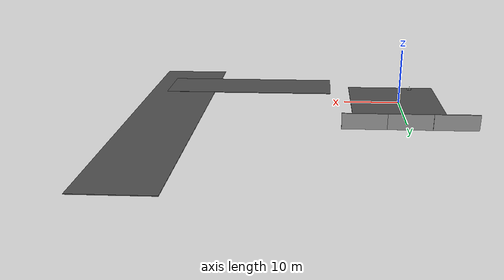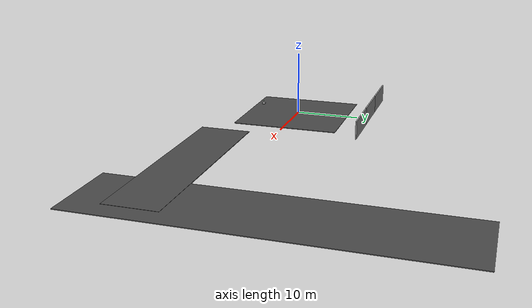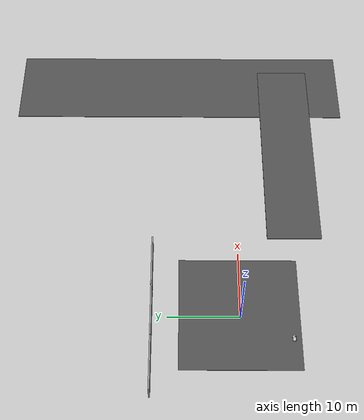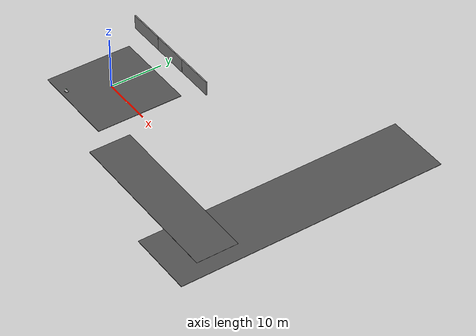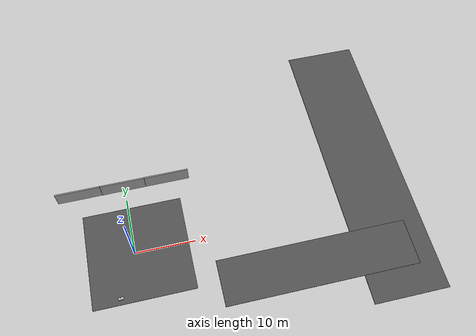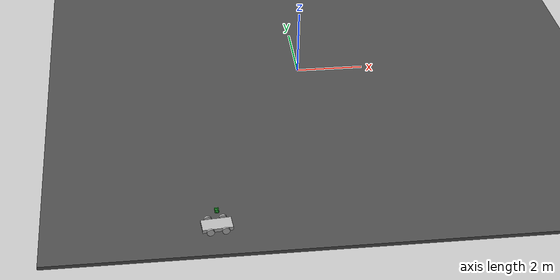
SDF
<sdf version="1.6">
 <world name="default">
  <light name="sun" type="directional">
   <pose>0 0 10 0 -0 0</pose>
   <diffuse>0.8 0.8 0.8 1</diffuse>
   <specular>0.1 0.1 0.1 1</specular>
   <attenuation>
    <range>1000</range>
    <constant>0.9</constant>
    <linear>0.01</linear>
    <quadratic>0.001</quadratic>
   </attenuation>
   <direction>-0.5 0.5 -1</direction>
  </light>
  <gravity>0 0 -9.8</gravity>
  <magnetic_field>6e-06 2.3e-05 -4.2e-05</magnetic_field>
  <atmosphere type="adiabatic"/>
  <physics name="default_physics" default="0" type="ode">
   <max_step_size>0.001</max_step_size>
   <real_time_factor>1</real_time_factor>
   <real_time_update_rate>1000</real_time_update_rate>
  </physics>
  <scene><ambient>0.4 0.4 0.4 1</ambient><background>0.7 0.7 0.7 1</background><shadows>1</shadows></scene>
  <spherical_coordinates>
   <surface_model>EARTH_WGS84</surface_model>
   <latitude_deg>0</latitude_deg>
   <longitude_deg>0</longitude_deg>
   <elevation>0</elevation>
   <heading_deg>0</heading_deg>
  </spherical_coordinates>
  <model name="asphalt_plane">
   <static>1</static>
   <link name="link">
    <collision name="collision"><geometry><box><size>16.5573 16.4946 0.1</size></box></geometry></collision>
    <visual name="visual">
     <cast_shadows>0</cast_shadows>
     <geometry><box><size>16.5573 16.4946 0.1</size></box></geometry>
     <material>
      <script>
       <uri>model://asphalt_plane/materials/scripts</uri>
       <uri>model://asphalt_plane/materials/textures</uri>
       <name>vrc/asphalt</name>
      </script>
     </material>
    </visual>
   </link>
   <pose>0.624498 0.147671 0 0 -0 0</pose>
  </model>
  <model name="small_car">
   <link name="chassis">
    <inertial>
     <pose>0 0 0.203947 0 -0 0</pose>
     <mass>30.4</mass>
     <inertia>
      <ixx>5.03553</ixx>
      <ixy>4.03897e-28</ixy>
      <ixz>0</ixz>
      <iyy>25.0355</iyy>
      <iyz>0</iyz>
      <izz>4</izz>
     </inertia>
    </inertial>
    <collision name="chassis_fixed_joint_lump__collision_collision">
     <geometry><box><size>0.8 0.4 0.1</size></box></geometry>
    </collision>
    <collision name="chassis_fixed_joint_lump__camera_neg_y_collision_1">
     <pose>0 0 0.5 0 -0 3.14159</pose>
     <geometry><box><size>0.5 0.1 0.1</size></box></geometry>
    </collision>
    <collision name="chassis_fixed_joint_lump__camera_pos_x_collision_2">
     <pose>0 0 0.5 0 -0 0</pose>
     <geometry><box><size>0.1 0.5 0.1</size></box></geometry>
    </collision>
    <collision name="chassis_fixed_joint_lump__camera_neg_x_collision_3">
     <pose>0 0 0.5 0 -0 -5e-06</pose>
     <geometry><box><size>0.1 0.5 0.1</size></box></geometry>
    </collision>
    <collision name="chassis_fixed_joint_lump__camera_pos_y_collision_4">
     <pose>0 0 0.5 0 -0 3.14159</pose>
     <geometry><box><size>0.5 0.1 0.1</size></box></geometry>
    </collision>
    <visual name="chassis_visual_visual"><geometry><box><size>0.8 0.4 0.1</size></box></geometry></visual>
    <visual name="chassis_fixed_joint_lump__camera_neg_y_visual_1">
     <pose>0 0 0.5 0 -0 3.14159</pose>
     <geometry><box><size>0.1 0.1 0.1</size></box></geometry>
     <material>
      <script><name>Gazebo/Green</name><uri>file://media/materials/scripts/gazebo.material</uri></script>
     </material>
    </visual>
    <visual name="chassis_fixed_joint_lump__camera_pos_x_visual_2">
     <pose>0 0 0.5 0 -0 0</pose>
     <geometry><box><size>0.1 0.1 0.1</size></box></geometry>
     <material>
      <script><name>Gazebo/Green</name><uri>file://media/materials/scripts/gazebo.material</uri></script>
     </material>
    </visual>
    <visual name="chassis_fixed_joint_lump__camera_neg_x_visual_3">
     <pose>0 0 0.5 0 -0 -5e-06</pose>
     <geometry><box><size>0.1 0.1 0.1</size></box></geometry>
     <material>
      <script><name>Gazebo/Green</name><uri>file://media/materials/scripts/gazebo.material</uri></script>
     </material>
    </visual>
    <visual name="chassis_fixed_joint_lump__camera_pos_y_visual_4">
     <pose>0 0 0.5 0 -0 3.14159</pose>
     <geometry><box><size>0.1 0.1 0.1</size></box></geometry>
     <material>
      <script><name>Gazebo/Green</name><uri>file://media/materials/scripts/gazebo.material</uri></script>
     </material>
    </visual>
    <sensor name="camera4" type="wideanglecamera">
     <update_rate>30</update_rate>
     <camera name="head_4">
      <horizontal_fov>1.5708</horizontal_fov>
      <image><width>960</width><height>540</height><format>R8G8B8</format></image>
      <clip><near>0.02</near><far>300</far></clip>
      <lens>
       <type>custom</type>
       <custom_function><c1>1.07</c1><c2>4</c2><f>1</f><fun>tan</fun></custom_function>
       <scale_to_hfov>1</scale_to_hfov>
       <cutoff_angle>3.1415</cutoff_angle>
       <env_texture_size>512</env_texture_size>
      </lens>
     </camera>
     <plugin name="camera_controller" filename="libgazebo_ros_camera.so">
      <alwaysOn>true</alwaysOn>
      <updateRate>30.0</updateRate>
      <cameraName>mybot/camera4</cameraName>
      <imageTopicName>image_raw</imageTopicName>
      <cameraInfoTopicName>camera_info</cameraInfoTopicName>
      <frameName>camera</frameName>
      <hackBaseline>0.07</hackBaseline>
      <robotNamespace>/</robotNamespace>
     </plugin>
     <pose>0 0 0.5 0 -0 -1.5708</pose>
    </sensor>
    <sensor name="camera1" type="wideanglecamera">
     <update_rate>30</update_rate>
     <camera name="head_1">
      <horizontal_fov>1.5708</horizontal_fov>
      <image><width>960</width><height>540</height><format>R8G8B8</format></image>
      <clip><near>0.02</near><far>300</far></clip>
      <lens>
       <type>custom</type>
       <custom_function><c1>1.07</c1><c2>4</c2><f>1</f><fun>tan</fun></custom_function>
       <scale_to_hfov>1</scale_to_hfov>
       <cutoff_angle>3.1415</cutoff_angle>
       <env_texture_size>512</env_texture_size>
      </lens>
     </camera>
     <plugin name="camera_controller" filename="libgazebo_ros_camera.so">
      <alwaysOn>true</alwaysOn>
      <updateRate>30.0</updateRate>
      <cameraName>mybot/camera1</cameraName>
      <imageTopicName>image_raw</imageTopicName>
      <cameraInfoTopicName>camera_info</cameraInfoTopicName>
      <frameName>camera</frameName>
      <hackBaseline>0.07</hackBaseline>
      <robotNamespace>/</robotNamespace>
     </plugin>
     <pose>0 0 0.5 0 -0 0</pose>
    </sensor>
    <sensor name="camera3" type="wideanglecamera">
     <update_rate>30</update_rate>
     <camera name="head_3">
      <horizontal_fov>1.5708</horizontal_fov>
      <image><width>960</width><height>540</height><format>R8G8B8</format></image>
      <clip><near>0.02</near><far>300</far></clip>
      <lens>
       <type>custom</type>
       <custom_function><c1>1.07</c1><c2>4</c2><f>1</f><fun>tan</fun></custom_function>
       <scale_to_hfov>1</scale_to_hfov>
       <cutoff_angle>3.1415</cutoff_angle>
       <env_texture_size>512</env_texture_size>
      </lens>
     </camera>
     <plugin name="camera_controller" filename="libgazebo_ros_camera.so">
      <alwaysOn>true</alwaysOn>
      <updateRate>30.0</updateRate>
      <cameraName>mybot/camera3</cameraName>
      <imageTopicName>image_raw</imageTopicName>
      <cameraInfoTopicName>camera_info</cameraInfoTopicName>
      <frameName>camera</frameName>
      <hackBaseline>0.07</hackBaseline>
      <robotNamespace>/</robotNamespace>
     </plugin>
     <pose>0 0 0.5 0 -0 3.14159</pose>
    </sensor>
    <sensor name="camera2" type="wideanglecamera">
     <update_rate>30</update_rate>
     <camera name="head_2">
      <horizontal_fov>1.5708</horizontal_fov>
      <image><width>960</width><height>540</height><format>R8G8B8</format></image>
      <clip><near>0.02</near><far>300</far></clip>
      <lens>
       <type>custom</type>
       <custom_function><c1>1.07</c1><c2>4</c2><f>1</f><fun>tan</fun></custom_function>
       <scale_to_hfov>1</scale_to_hfov>
       <cutoff_angle>3.1415</cutoff_angle>
       <env_texture_size>512</env_texture_size>
      </lens>
     </camera>
     <plugin name="camera_controller" filename="libgazebo_ros_camera.so">
      <alwaysOn>true</alwaysOn>
      <updateRate>30.0</updateRate>
      <cameraName>mybot/camera2</cameraName>
      <imageTopicName>image_raw</imageTopicName>
      <cameraInfoTopicName>camera_info</cameraInfoTopicName>
      <frameName>camera</frameName>
      <hackBaseline>0.07</hackBaseline>
      <robotNamespace>/</robotNamespace>
     </plugin>
     <pose>0 0 0.5 0 -0 1.5708</pose>
    </sensor>
   </link>
   <link name="back_left_wheel">
    <pose>-0.2 0.25 0 0 -0 0</pose>
    <inertial>
     <pose>0 0 0 -0 1.5707 1.5707</pose>
     <mass>5</mass>
     <inertia><ixx>1</ixx><ixy>0</ixy><ixz>0</ixz><iyy>1</iyy><iyz>0</iyz><izz>1</izz></inertia>
    </inertial>
    <collision name="back_left_wheel_fixed_joint_lump__collision_collision">
     <pose>0 0 0 3.14159 1.57079 -1.57089</pose>
     <geometry><cylinder><length>0.05</length><radius>0.1</radius></cylinder></geometry>
    </collision>
    <visual name="back_left_wheel_visual_visual">
     <pose>0 0 0 3.14159 1.57079 -1.57089</pose>
     <geometry><cylinder><length>0.05</length><radius>0.1</radius></cylinder></geometry>
    </visual>
   </link>
   <joint name="back_left_wheel_joint" type="revolute">
    <child>back_left_wheel</child>
    <parent>chassis</parent>
    <axis>
     <xyz>0 1 0</xyz>
     <limit><lower>-1e+16</lower><upper>1e+16</upper></limit>
     <dynamics><spring_reference>0</spring_reference><spring_stiffness>0</spring_stiffness></dynamics>
     <use_parent_model_frame>1</use_parent_model_frame>
    </axis>
   </joint>
   <link name="back_right_wheel">
    <pose>-0.2 -0.25 0 0 -0 0</pose>
    <inertial>
     <pose>0 0 0 -0 1.5707 1.5707</pose>
     <mass>5</mass>
     <inertia><ixx>1</ixx><ixy>0</ixy><ixz>0</ixz><iyy>1</iyy><iyz>0</iyz><izz>1</izz></inertia>
    </inertial>
    <collision name="back_right_wheel_fixed_joint_lump__collision_collision">
     <pose>0 0 0 3.14159 1.57079 -1.57089</pose>
     <geometry><cylinder><length>0.05</length><radius>0.1</radius></cylinder></geometry>
    </collision>
    <visual name="back_right_wheel_visual_visual">
     <pose>0 0 0 3.14159 1.57079 -1.57089</pose>
     <geometry><cylinder><length>0.05</length><radius>0.1</radius></cylinder></geometry>
    </visual>
   </link>
   <joint name="back_right_wheel_joint" type="revolute">
    <child>back_right_wheel</child>
    <parent>chassis</parent>
    <axis>
     <xyz>0 1 0</xyz>
     <limit><lower>-1e+16</lower><upper>1e+16</upper></limit>
     <dynamics><spring_reference>0</spring_reference><spring_stiffness>0</spring_stiffness></dynamics>
     <use_parent_model_frame>1</use_parent_model_frame>
    </axis>
   </joint>
   <link name="front_left_wheel">
    <pose>0.2 0.25 0 0 -0 0</pose>
    <inertial>
     <pose>0 0 0 -0 1.5707 1.5707</pose>
     <mass>5</mass>
     <inertia><ixx>1</ixx><ixy>0</ixy><ixz>0</ixz><iyy>1</iyy><iyz>0</iyz><izz>1</izz></inertia>
    </inertial>
    <collision name="front_left_wheel_fixed_joint_lump__collision_collision">
     <pose>0 0 0 3.14159 1.57079 -1.57089</pose>
     <geometry><cylinder><length>0.05</length><radius>0.1</radius></cylinder></geometry>
    </collision>
    <visual name="front_left_wheel_visual_visual">
     <pose>0 0 0 3.14159 1.57079 -1.57089</pose>
     <geometry><cylinder><length>0.05</length><radius>0.1</radius></cylinder></geometry>
    </visual>
   </link>
   <joint name="front_left_wheel_joint" type="revolute">
    <child>front_left_wheel</child>
    <parent>chassis</parent>
    <axis>
     <xyz>0 1 0</xyz>
     <limit><lower>-1e+16</lower><upper>1e+16</upper></limit>
     <dynamics><spring_reference>0</spring_reference><spring_stiffness>0</spring_stiffness></dynamics>
     <use_parent_model_frame>1</use_parent_model_frame>
    </axis>
   </joint>
   <link name="front_right_wheel">
    <pose>0.2 -0.25 0 0 -0 0</pose>
    <inertial>
     <pose>0 0 0 -0 1.5707 1.5707</pose>
     <mass>5</mass>
     <inertia><ixx>1</ixx><ixy>0</ixy><ixz>0</ixz><iyy>1</iyy><iyz>0</iyz><izz>1</izz></inertia>
    </inertial>
    <collision name="front_right_wheel_fixed_joint_lump__collision_collision">
     <pose>0 0 0 3.14159 1.57079 -1.57089</pose>
     <geometry><cylinder><length>0.05</length><radius>0.1</radius></cylinder></geometry>
    </collision>
    <visual name="front_right_wheel_visual_visual">
     <pose>0 0 0 3.14159 1.57079 -1.57089</pose>
     <geometry><cylinder><length>0.05</length><radius>0.1</radius></cylinder></geometry>
    </visual>
   </link>
   <joint name="front_right_wheel_joint" type="revolute">
    <child>front_right_wheel</child>
    <parent>chassis</parent>
    <axis>
     <xyz>0 1 0</xyz>
     <limit><lower>-1e+16</lower><upper>1e+16</upper></limit>
     <dynamics><spring_reference>0</spring_reference><spring_stiffness>0</spring_stiffness></dynamics>
     <use_parent_model_frame>1</use_parent_model_frame>
    </axis>
   </joint>
   <static>0</static>
   <plugin name="skid_steer_drive_controller" filename="libgazebo_ros_skid_steer_drive.so">
    <updateRate>100.0</updateRate>
    <robotNamespace>/</robotNamespace>
    <leftFrontJoint>front_left_wheel_joint</leftFrontJoint>
    <rightFrontJoint>front_right_wheel_joint</rightFrontJoint>
    <leftRearJoint>back_left_wheel_joint</leftRearJoint>
    <rightRearJoint>back_right_wheel_joint</rightRearJoint>
    <wheelSeparation>0.1</wheelSeparation>
    <wheelDiameter>0.2</wheelDiameter>
    <robotBaseFrame>chassis</robotBaseFrame>
    <torque>20</torque>
    <topicName>cmd_vel</topicName>
    <broadcastTF>false</broadcastTF>
   </plugin>
   <pose>-3.10023 -7.09833 0.150001 0 3e-06 0.081221</pose>
  </model>
  <model name="asphalt_plane_0">
   <static>1</static>
   <link name="link">
    <collision name="collision"><geometry><box><size>12.4678 50.9477 0.1</size></box></geometry></collision>
    <visual name="visual">
     <cast_shadows>0</cast_shadows>
     <geometry><box><size>12.4678 50.9477 0.1</size></box></geometry>
     <material>
      <script>
       <uri>model://asphalt_plane/materials/scripts</uri>
       <uri>model://asphalt_plane/materials/textures</uri>
       <name>vrc/asphalt</name>
      </script>
     </material>
    </visual>
   </link>
   <pose>41.4575 8.48705 0 0 -0 0</pose>
  </model>
  <model name="asphalt_plane_0_clone">
   <static>1</static>
   <link name="link">
    <collision name="collision"><geometry><box><size>32.0827 7.85117 0.1</size></box></geometry></collision>
    <visual name="visual">
     <cast_shadows>0</cast_shadows>
     <geometry><box><size>32.0827 7.85117 0.1</size></box></geometry>
     <material>
      <script>
       <uri>model://asphalt_plane/materials/scripts</uri>
       <uri>model://asphalt_plane/materials/textures</uri>
       <name>vrc/asphalt</name>
      </script>
     </material>
    </visual>
   </link>
   <pose>28.6104 -8.18633 0.027906 0 -0 0</pose>
  </model>
  <model name="grey_wall">
   <static>1</static>
   <link name="link">
    <pose>0 0 1.4 0 -0 0</pose>
    <collision name="collision"><geometry><box><size>7.5 0.2 2.8</size></box></geometry></collision>
    <visual name="visual">
     <cast_shadows>0</cast_shadows>
     <geometry><box><size>7.5 0.2 2.8</size></box></geometry>
     <material>
      <script>
       <uri>model://grey_wall/materials/scripts</uri>
       <uri>model://grey_wall/materials/textures</uri>
       <name>vrc/grey_wall</name>
      </script>
     </material>
    </visual>
   </link>
   <pose>-7.67001 12.1094 0 0 -0 0</pose>
  </model>
  <model name="grey_wall_clone">
   <static>1</static>
   <link name="link">
    <pose>0 0 1.4 0 -0 0</pose>
    <collision name="collision"><geometry><box><size>7.5 0.2 2.8</size></box></geometry></collision>
    <visual name="visual">
     <cast_shadows>0</cast_shadows>
     <geometry><box><size>7.5 0.2 2.8</size></box></geometry>
     <material>
      <script>
       <uri>model://grey_wall/materials/scripts</uri>
       <uri>model://grey_wall/materials/textures</uri>
       <name>vrc/grey_wall</name>
      </script>
     </material>
    </visual>
   </link>
   <pose>-0.149113 12.107 0 0 -0 0</pose>
  </model>
  <model name="grey_wall_clone_clone">
   <static>1</static>
   <link name="link">
    <pose>0 0 1.4 0 -0 0</pose>
    <collision name="collision"><geometry><box><size>7.5 0.2 2.8</size></box></geometry></collision>
    <visual name="visual">
     <cast_shadows>0</cast_shadows>
     <geometry><box><size>7.5 0.2 2.8</size></box></geometry>
     <material>
      <script>
       <uri>model://grey_wall/materials/scripts</uri>
       <uri>model://grey_wall/materials/textures</uri>
       <name>vrc/grey_wall</name>
      </script>
     </material>
    </visual>
   </link>
   <pose>7.34988 12.1293 0 0 -0 0</pose>
  </model>
 </world>
</sdf>
